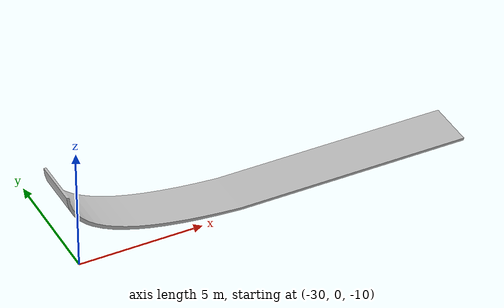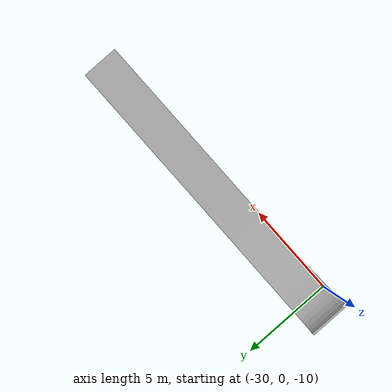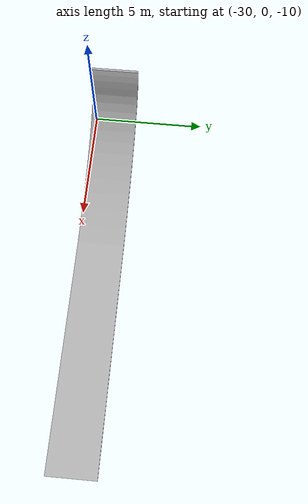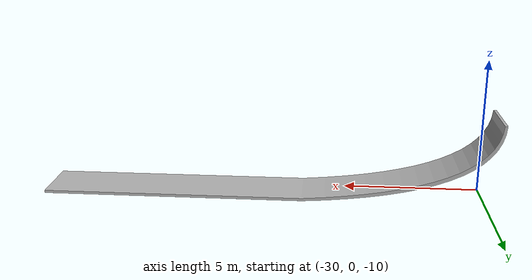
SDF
<?xml version="1.0" ?>
<sdf version="1.6">
  <model name="mywall1">
    <static>true</static>
    <link name="link">
      <collision name="collision">
        <geometry>
          <mesh>
            <scale>0.01 0.01 0.01</scale>
            <uri>model://mywall1/meshes/Pieza3.obj</uri>
          </mesh>
        </geometry>
      </collision>
      <visual name="visual">
        <geometry>

          <mesh>
            <scale>0.01 0.01 0.01</scale>
            <uri>model://mywall1/meshes/Pieza3.obj</uri>
          </mesh>
        </geometry>
      </visual>
    </link>
  </model>
</sdf>
